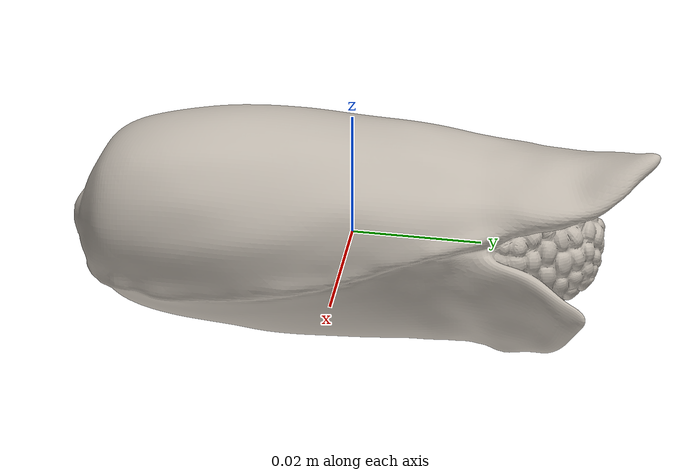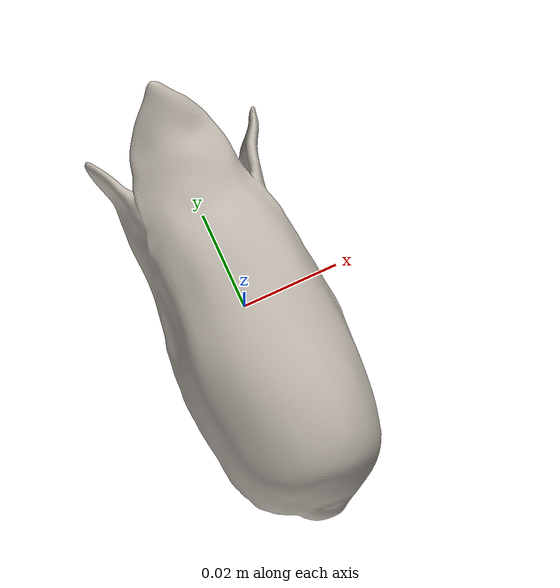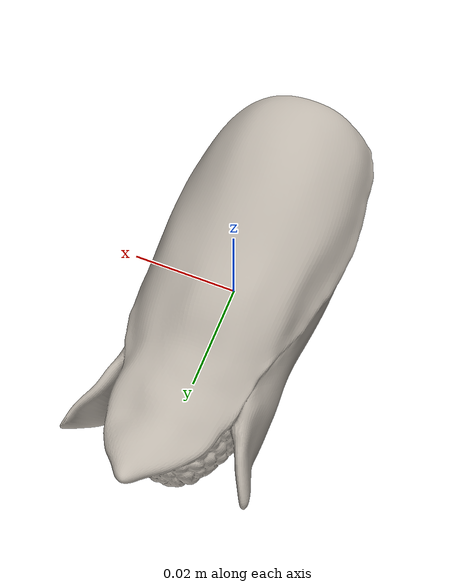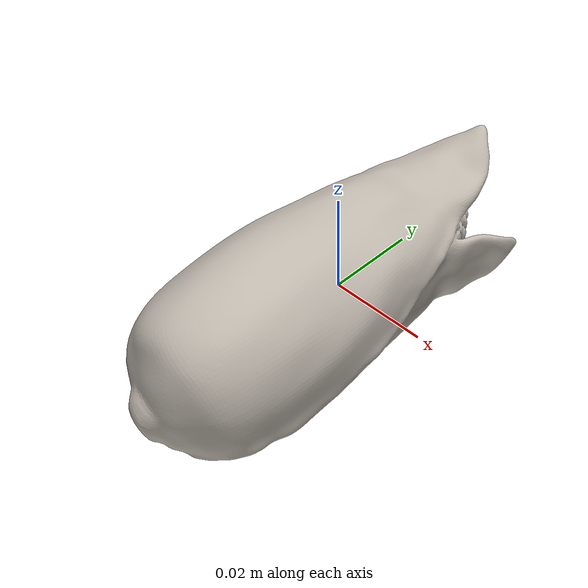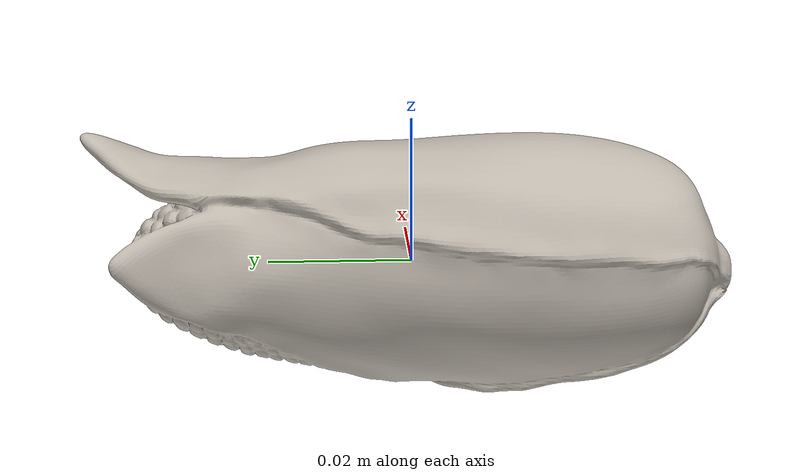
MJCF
<mujoco model="corn_5">
  <asset>
    <texture file="/home/abhiram03/Desktop/mimicgen/robosuite-kitchen/robosuite/models/assets/textures/ceramic.png" name="tex-corn_5" type="2d"/>
    <material name="corn_5" reflectance="0.5" texrepeat="1 1" texture="tex-corn_5" texuniform="false"/>
    <mesh file="visual/model_normalized_0.obj" name="model_normalized_0_vis" scale="0.09 0.09 0.09" refquat="0.7071067811865475 0.7071067811865475 0.0 0.0"/>
    <mesh file="collision/model_normalized_collision_13.obj" name="model_normalized_collision_13._coll" scale="0.09 0.09 0.09" refquat="0.7071067811865475 0.7071067811865475 0.0 0.0"/>
    <mesh file="collision/model_normalized_collision_15.obj" name="model_normalized_collision_15._coll" scale="0.09 0.09 0.09" refquat="0.7071067811865475 0.7071067811865475 0.0 0.0"/>
    <mesh file="collision/model_normalized_collision_10.obj" name="model_normalized_collision_10._coll" scale="0.09 0.09 0.09" refquat="0.7071067811865475 0.7071067811865475 0.0 0.0"/>
    <mesh file="collision/model_normalized_collision_26.obj" name="model_normalized_collision_26._coll" scale="0.09 0.09 0.09" refquat="0.7071067811865475 0.7071067811865475 0.0 0.0"/>
    <mesh file="collision/model_normalized_collision_25.obj" name="model_normalized_collision_25._coll" scale="0.09 0.09 0.09" refquat="0.7071067811865475 0.7071067811865475 0.0 0.0"/>
    <mesh file="collision/model_normalized_collision_5.obj" name="model_normalized_collision_5._coll" scale="0.09 0.09 0.09" refquat="0.7071067811865475 0.7071067811865475 0.0 0.0"/>
    <mesh file="collision/model_normalized_collision_31.obj" name="model_normalized_collision_31._coll" scale="0.09 0.09 0.09" refquat="0.7071067811865475 0.7071067811865475 0.0 0.0"/>
    <mesh file="collision/model_normalized_collision_3.obj" name="model_normalized_collision_3._coll" scale="0.09 0.09 0.09" refquat="0.7071067811865475 0.7071067811865475 0.0 0.0"/>
    <mesh file="collision/model_normalized_collision_14.obj" name="model_normalized_collision_14._coll" scale="0.09 0.09 0.09" refquat="0.7071067811865475 0.7071067811865475 0.0 0.0"/>
    <mesh file="collision/model_normalized_collision_28.obj" name="model_normalized_collision_28._coll" scale="0.09 0.09 0.09" refquat="0.7071067811865475 0.7071067811865475 0.0 0.0"/>
    <mesh file="collision/model_normalized_collision_11.obj" name="model_normalized_collision_11._coll" scale="0.09 0.09 0.09" refquat="0.7071067811865475 0.7071067811865475 0.0 0.0"/>
    <mesh file="collision/model_normalized_collision_29.obj" name="model_normalized_collision_29._coll" scale="0.09 0.09 0.09" refquat="0.7071067811865475 0.7071067811865475 0.0 0.0"/>
    <mesh file="collision/model_normalized_collision_24.obj" name="model_normalized_collision_24._coll" scale="0.09 0.09 0.09" refquat="0.7071067811865475 0.7071067811865475 0.0 0.0"/>
    <mesh file="collision/model_normalized_collision_1.obj" name="model_normalized_collision_1._coll" scale="0.09 0.09 0.09" refquat="0.7071067811865475 0.7071067811865475 0.0 0.0"/>
    <mesh file="collision/model_normalized_collision_0.obj" name="model_normalized_collision_0._coll" scale="0.09 0.09 0.09" refquat="0.7071067811865475 0.7071067811865475 0.0 0.0"/>
    <mesh file="collision/model_normalized_collision_27.obj" name="model_normalized_collision_27._coll" scale="0.09 0.09 0.09" refquat="0.7071067811865475 0.7071067811865475 0.0 0.0"/>
    <mesh file="collision/model_normalized_collision_9.obj" name="model_normalized_collision_9._coll" scale="0.09 0.09 0.09" refquat="0.7071067811865475 0.7071067811865475 0.0 0.0"/>
    <mesh file="collision/model_normalized_collision_19.obj" name="model_normalized_collision_19._coll" scale="0.09 0.09 0.09" refquat="0.7071067811865475 0.7071067811865475 0.0 0.0"/>
    <mesh file="collision/model_normalized_collision_21.obj" name="model_normalized_collision_21._coll" scale="0.09 0.09 0.09" refquat="0.7071067811865475 0.7071067811865475 0.0 0.0"/>
    <mesh file="collision/model_normalized_collision_30.obj" name="model_normalized_collision_30._coll" scale="0.09 0.09 0.09" refquat="0.7071067811865475 0.7071067811865475 0.0 0.0"/>
    <mesh file="collision/model_normalized_collision_20.obj" name="model_normalized_collision_20._coll" scale="0.09 0.09 0.09" refquat="0.7071067811865475 0.7071067811865475 0.0 0.0"/>
    <mesh file="collision/model_normalized_collision_2.obj" name="model_normalized_collision_2._coll" scale="0.09 0.09 0.09" refquat="0.7071067811865475 0.7071067811865475 0.0 0.0"/>
    <mesh file="collision/model_normalized_collision_7.obj" name="model_normalized_collision_7._coll" scale="0.09 0.09 0.09" refquat="0.7071067811865475 0.7071067811865475 0.0 0.0"/>
    <mesh file="collision/model_normalized_collision_22.obj" name="model_normalized_collision_22._coll" scale="0.09 0.09 0.09" refquat="0.7071067811865475 0.7071067811865475 0.0 0.0"/>
    <mesh file="collision/model_normalized_collision_16.obj" name="model_normalized_collision_16._coll" scale="0.09 0.09 0.09" refquat="0.7071067811865475 0.7071067811865475 0.0 0.0"/>
    <mesh file="collision/model_normalized_collision_8.obj" name="model_normalized_collision_8._coll" scale="0.09 0.09 0.09" refquat="0.7071067811865475 0.7071067811865475 0.0 0.0"/>
    <mesh file="collision/model_normalized_collision_6.obj" name="model_normalized_collision_6._coll" scale="0.09 0.09 0.09" refquat="0.7071067811865475 0.7071067811865475 0.0 0.0"/>
    <mesh file="collision/model_normalized_collision_18.obj" name="model_normalized_collision_18._coll" scale="0.09 0.09 0.09" refquat="0.7071067811865475 0.7071067811865475 0.0 0.0"/>
    <mesh file="collision/model_normalized_collision_17.obj" name="model_normalized_collision_17._coll" scale="0.09 0.09 0.09" refquat="0.7071067811865475 0.7071067811865475 0.0 0.0"/>
    <mesh file="collision/model_normalized_collision_12.obj" name="model_normalized_collision_12._coll" scale="0.09 0.09 0.09" refquat="0.7071067811865475 0.7071067811865475 0.0 0.0"/>
    <mesh file="collision/model_normalized_collision_4.obj" name="model_normalized_collision_4._coll" scale="0.09 0.09 0.09" refquat="0.7071067811865475 0.7071067811865475 0.0 0.0"/>
    <mesh file="collision/model_normalized_collision_23.obj" name="model_normalized_collision_23._coll" scale="0.09 0.09 0.09" refquat="0.7071067811865475 0.7071067811865475 0.0 0.0"/>
    <texture type="2d" name="b69cc63d76a4_corn__3d_asset_0_gl_texture_kd" file="visual/b69cc63d76a4_corn__3d_asset_0_gl_texture_kd.png"/>
    <material name="Material_0" texture="b69cc63d76a4_corn__3d_asset_0_gl_texture_kd" specular="0.5" shininess="0.5"/>
  </asset>
  <worldbody>
    <body>
      <body name="object">
        <geom solimp="0.998 0.998 0.001" solref="0.001 1" density="100" friction="0.95 0.3 0.1" type="mesh" mesh="model_normalized_0_vis" conaffinity="0" contype="0" group="1" material="Material_0"/>
        <geom solimp="0.998 0.998 0.001" solref="0.001 1" density="100" friction="0.95 0.3 0.1" type="mesh" mesh="model_normalized_collision_13._coll" group="0" rgba="0.8 0.8 0.8 0.0"/>
        <geom solimp="0.998 0.998 0.001" solref="0.001 1" density="100" friction="0.95 0.3 0.1" type="mesh" mesh="model_normalized_collision_15._coll" group="0" rgba="0.8 0.8 0.8 0.0"/>
        <geom solimp="0.998 0.998 0.001" solref="0.001 1" density="100" friction="0.95 0.3 0.1" type="mesh" mesh="model_normalized_collision_10._coll" group="0" rgba="0.8 0.8 0.8 0.0"/>
        <geom solimp="0.998 0.998 0.001" solref="0.001 1" density="100" friction="0.95 0.3 0.1" type="mesh" mesh="model_normalized_collision_26._coll" group="0" rgba="0.8 0.8 0.8 0.0"/>
        <geom solimp="0.998 0.998 0.001" solref="0.001 1" density="100" friction="0.95 0.3 0.1" type="mesh" mesh="model_normalized_collision_25._coll" group="0" rgba="0.8 0.8 0.8 0.0"/>
        <geom solimp="0.998 0.998 0.001" solref="0.001 1" density="100" friction="0.95 0.3 0.1" type="mesh" mesh="model_normalized_collision_5._coll" group="0" rgba="0.8 0.8 0.8 0.0"/>
        <geom solimp="0.998 0.998 0.001" solref="0.001 1" density="100" friction="0.95 0.3 0.1" type="mesh" mesh="model_normalized_collision_31._coll" group="0" rgba="0.8 0.8 0.8 0.0"/>
        <geom solimp="0.998 0.998 0.001" solref="0.001 1" density="100" friction="0.95 0.3 0.1" type="mesh" mesh="model_normalized_collision_3._coll" group="0" rgba="0.8 0.8 0.8 0.0"/>
        <geom solimp="0.998 0.998 0.001" solref="0.001 1" density="100" friction="0.95 0.3 0.1" type="mesh" mesh="model_normalized_collision_14._coll" group="0" rgba="0.8 0.8 0.8 0.0"/>
        <geom solimp="0.998 0.998 0.001" solref="0.001 1" density="100" friction="0.95 0.3 0.1" type="mesh" mesh="model_normalized_collision_28._coll" group="0" rgba="0.8 0.8 0.8 0.0"/>
        <geom solimp="0.998 0.998 0.001" solref="0.001 1" density="100" friction="0.95 0.3 0.1" type="mesh" mesh="model_normalized_collision_11._coll" group="0" rgba="0.8 0.8 0.8 0.0"/>
        <geom solimp="0.998 0.998 0.001" solref="0.001 1" density="100" friction="0.95 0.3 0.1" type="mesh" mesh="model_normalized_collision_29._coll" group="0" rgba="0.8 0.8 0.8 0.0"/>
        <geom solimp="0.998 0.998 0.001" solref="0.001 1" density="100" friction="0.95 0.3 0.1" type="mesh" mesh="model_normalized_collision_24._coll" group="0" rgba="0.8 0.8 0.8 0.0"/>
        <geom solimp="0.998 0.998 0.001" solref="0.001 1" density="100" friction="0.95 0.3 0.1" type="mesh" mesh="model_normalized_collision_1._coll" group="0" rgba="0.8 0.8 0.8 0.0"/>
        <geom solimp="0.998 0.998 0.001" solref="0.001 1" density="100" friction="0.95 0.3 0.1" type="mesh" mesh="model_normalized_collision_0._coll" group="0" rgba="0.8 0.8 0.8 0.0"/>
        <geom solimp="0.998 0.998 0.001" solref="0.001 1" density="100" friction="0.95 0.3 0.1" type="mesh" mesh="model_normalized_collision_27._coll" group="0" rgba="0.8 0.8 0.8 0.0"/>
        <geom solimp="0.998 0.998 0.001" solref="0.001 1" density="100" friction="0.95 0.3 0.1" type="mesh" mesh="model_normalized_collision_9._coll" group="0" rgba="0.8 0.8 0.8 0.0"/>
        <geom solimp="0.998 0.998 0.001" solref="0.001 1" density="100" friction="0.95 0.3 0.1" type="mesh" mesh="model_normalized_collision_19._coll" group="0" rgba="0.8 0.8 0.8 0.0"/>
        <geom solimp="0.998 0.998 0.001" solref="0.001 1" density="100" friction="0.95 0.3 0.1" type="mesh" mesh="model_normalized_collision_21._coll" group="0" rgba="0.8 0.8 0.8 0.0"/>
        <geom solimp="0.998 0.998 0.001" solref="0.001 1" density="100" friction="0.95 0.3 0.1" type="mesh" mesh="model_normalized_collision_30._coll" group="0" rgba="0.8 0.8 0.8 0.0"/>
        <geom solimp="0.998 0.998 0.001" solref="0.001 1" density="100" friction="0.95 0.3 0.1" type="mesh" mesh="model_normalized_collision_20._coll" group="0" rgba="0.8 0.8 0.8 0.0"/>
        <geom solimp="0.998 0.998 0.001" solref="0.001 1" density="100" friction="0.95 0.3 0.1" type="mesh" mesh="model_normalized_collision_2._coll" group="0" rgba="0.8 0.8 0.8 0.0"/>
        <geom solimp="0.998 0.998 0.001" solref="0.001 1" density="100" friction="0.95 0.3 0.1" type="mesh" mesh="model_normalized_collision_7._coll" group="0" rgba="0.8 0.8 0.8 0.0"/>
        <geom solimp="0.998 0.998 0.001" solref="0.001 1" density="100" friction="0.95 0.3 0.1" type="mesh" mesh="model_normalized_collision_22._coll" group="0" rgba="0.8 0.8 0.8 0.0"/>
        <geom solimp="0.998 0.998 0.001" solref="0.001 1" density="100" friction="0.95 0.3 0.1" type="mesh" mesh="model_normalized_collision_16._coll" group="0" rgba="0.8 0.8 0.8 0.0"/>
        <geom solimp="0.998 0.998 0.001" solref="0.001 1" density="100" friction="0.95 0.3 0.1" type="mesh" mesh="model_normalized_collision_8._coll" group="0" rgba="0.8 0.8 0.8 0.0"/>
        <geom solimp="0.998 0.998 0.001" solref="0.001 1" density="100" friction="0.95 0.3 0.1" type="mesh" mesh="model_normalized_collision_6._coll" group="0" rgba="0.8 0.8 0.8 0.0"/>
        <geom solimp="0.998 0.998 0.001" solref="0.001 1" density="100" friction="0.95 0.3 0.1" type="mesh" mesh="model_normalized_collision_18._coll" group="0" rgba="0.8 0.8 0.8 0.0"/>
        <geom solimp="0.998 0.998 0.001" solref="0.001 1" density="100" friction="0.95 0.3 0.1" type="mesh" mesh="model_normalized_collision_17._coll" group="0" rgba="0.8 0.8 0.8 0.0"/>
        <geom solimp="0.998 0.998 0.001" solref="0.001 1" density="100" friction="0.95 0.3 0.1" type="mesh" mesh="model_normalized_collision_12._coll" group="0" rgba="0.8 0.8 0.8 0.0"/>
        <geom solimp="0.998 0.998 0.001" solref="0.001 1" density="100" friction="0.95 0.3 0.1" type="mesh" mesh="model_normalized_collision_4._coll" group="0" rgba="0.8 0.8 0.8 0.0"/>
        <geom solimp="0.998 0.998 0.001" solref="0.001 1" density="100" friction="0.95 0.3 0.1" type="mesh" mesh="model_normalized_collision_23._coll" group="0" rgba="0.8 0.8 0.8 0.0"/>
      </body>
      <site rgba="0 0 0 0" size="0.005" pos="0.0001750270499999998 8.999999995262797e-10 -0.0241308243" name="bottom_site"/>
      <site rgba="0 0 0 0" size="0.005" pos="0.0001750270499999998 8.999999995262797e-10 0.0235964484" name="top_site"/>
      <site rgba="0 0 0 0" size="0.005" pos="0.024038663399999997 0.04568181929999999 -0.0002671879499999991" name="horizontal_radius_site"/>
    </body>
  </worldbody>
</mujoco>
